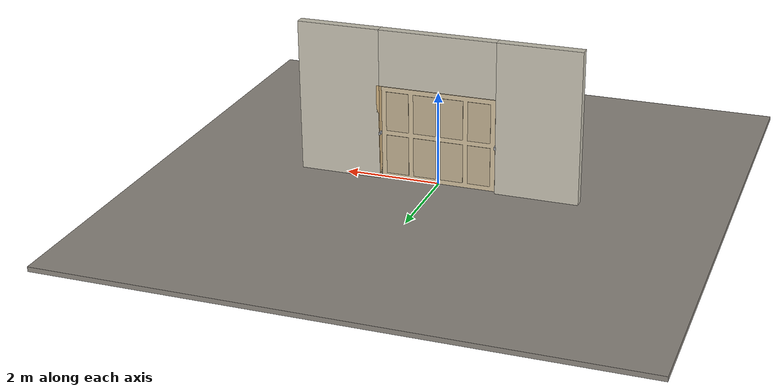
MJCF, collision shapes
<?xml version="1.0" ?>
<mujoco model="db0284_garage_tiltup_full">
  <compiler angle="radian" meshdir="../../hardware" texturedir="../../textures" autolimits="true" inertiafromgeom="false"/>
  <option timestep="0.002" integrator="implicitfast" cone="elliptic" impratio="10" noslip_iterations="3">
    <flag multiccd="enable"/>
  </option>
  <size memory="16M"/>
  <default>
    <geom condim="4" solref="0.005 1" solimp="0.95 0.99 0.001"/>
    <joint solreflimit="0.005 1" solimplimit="0.95 0.99 0.001"/>
    <tendon solreflimit="0.005 1"/>
    <equality solref="0.002 1"/>
  </default>
  <visual>
    <headlight ambient="0.4 0.4 0.4" diffuse="0.7 0.7 0.7" specular="0.2 0.2 0.2"/>
    <quality shadowsize="4096"/>
    <map znear="0.01" zfar="60"/>
  </visual>
  <asset>
    <mesh name="lever_01c630149d" file="lever_01c630149d.obj"/>
    <material name="mat_floor" rgba="0.55 0.53 0.5 1" specular="0.2" shininess="0.15" reflectance="0"/>
    <material name="mat_wall" rgba="0.78 0.76 0.7 1" specular="0.2" shininess="0.1" reflectance="0"/>
    <material name="mat_frame" rgba="0.82 0.7 0.5 1" specular="0.2" shininess="0.45" reflectance="0"/>
    <material name="mat_door" rgba="0.82 0.75 0.62 1" specular="0.23" shininess="0.58" reflectance="0.02"/>
    <material name="mat_door_panel" rgba="0.754 0.69 0.57 1" specular="0.23" shininess="0.58" reflectance="0.02"/>
    <material name="mat_track" rgba="0.65 0.66 0.68 1" specular="0.74" shininess="0.5" reflectance="0.36"/>
    <material name="mat_op_black_matte_metal" rgba="0.05 0.05 0.05 1" specular="0.38" shininess="0.3" reflectance="0.12"/>
    <material name="mat_trim" rgba="0.85 0.66 0.3 1" specular="0.8" shininess="0.75" reflectance="0.4"/>
    <texture name="skybox" type="skybox" builtin="gradient" rgb1="0.6 0.7 0.85" rgb2="0.9 0.92 0.95" width="256" height="256"/>
  </asset>
  <worldbody>
    <light name="sun" pos="1.5 -2.5 4" dir="-0.3 0.5 -0.8" directional="true" diffuse="0.8 0.8 0.8" specular="0.3 0.3 0.3" castshadow="true"/>
    <light name="fill" pos="-1.5 2.5 3" dir="0.3 -0.5 -0.7" directional="true" diffuse="0.35 0.35 0.4" castshadow="false"/>
    <camera name="robot_view" pos="0 -2.959375 1.853625" xyaxes="1 0 0 0 0.26963 0.962964" fovy="52"/>
    <camera name="far_view" pos="0 2.959375 1.853625" xyaxes="-1 0 0 0 -0.26963 0.962964" fovy="52"/>
    <camera name="iso" pos="2.249125 -2.485875 2.327125" xyaxes="0.741536 0.670913 0 -0.242917 0.268487 0.932151" fovy="46"/>
    <camera name="detail_handle" pos="0.2115 -1.1625 1.25" xyaxes="0.975133 0.221621 0 -0.065674 0.288965 0.955084" fovy="38"/>
    <geom name="floor" type="box" size="6 6 0.05" pos="0 0 -0.05" material="mat_floor" group="0" contype="1" conaffinity="1" friction="0.8 0.005 0.0001" density="2400"/>
    <geom name="wall_left" type="box" size="0.8775 0.1 1.625" pos="-2.1225 0 1.625" material="mat_wall" group="0" contype="1" conaffinity="1" friction="0.6 0.005 0.0001" density="800"/>
    <geom name="wall_right" type="box" size="0.8775 0.1 1.625" pos="2.1225 0 1.625" material="mat_wall" group="0" contype="1" conaffinity="1" friction="0.6 0.005 0.0001" density="800"/>
    <geom name="wall_header" type="box" size="1.245 0.1 0.6" pos="0 0 2.65" material="mat_wall" group="0" contype="1" conaffinity="1" friction="0.6 0.005 0.0001" density="800"/>
    <geom name="jamb_l" type="box" size="0.03 0.1 1.025" pos="-1.275 0 1.025" material="mat_frame" group="0" contype="1" conaffinity="1" friction="0.6 0.005 0.0001" density="400"/>
    <geom name="pivot_bracket_l" type="box" size="0.02 0.06 0.03" pos="-1.24 0.06 1" material="mat_track" group="1" contype="0" conaffinity="0" density="7850"/>
    <geom name="jamb_r" type="box" size="0.03 0.1 1.025" pos="1.275 0 1.025" material="mat_frame" group="0" contype="1" conaffinity="1" friction="0.6 0.005 0.0001" density="400"/>
    <geom name="pivot_bracket_r" type="box" size="0.02 0.06 0.03" pos="1.24 0.06 1" material="mat_track" group="1" contype="0" conaffinity="0" density="7850"/>
    <site name="approach_point" pos="0 -2 0" quat="1 0 0 0" size="0.05" rgba="0.2 0.9 0.2 0.5" group="4"/>
    <site name="goal_point" pos="0 2 0" quat="1 0 0 0" size="0.05" rgba="0.2 0.9 0.2 0.5" group="4"/>
    <site name="door_plane_center" pos="0 0 1.025" quat="1 0 0 0" size="0.02" rgba="0.2 0.9 0.2 0.5" group="4"/>
    <body name="door" pos="0 0 1">
      <inertial pos="0 0 0.01" mass="54.226482" quat="0 0 0.707107 0.707107" diaginertia="18.082740374 26.910760941 44.975160632"/>
      <joint name="door_hinge" type="hinge" axis="-1 0 0" limited="true" range="0 1.53589" damping="13.4548" frictionloss="3.831472" armature="0.5"/>
      <geom name="door_slab" type="box" size="1.22 0.0225 1" pos="0 0 0.01" material="mat_door" group="0" contype="1" conaffinity="1" friction="0.4 0.005 0.0001" density="1"/>
      <geom name="door_panel_0_n" type="box" size="0.2425 0.003 0.425" pos="-0.8775 -0.0255 -0.465" material="mat_door_panel" group="1" contype="0" conaffinity="0" density="1"/>
      <geom name="door_panel_0_p" type="box" size="0.2425 0.003 0.425" pos="-0.8775 0.0255 -0.465" material="mat_door_panel" group="1" contype="0" conaffinity="0" density="1"/>
      <geom name="door_panel_1_n" type="box" size="0.2425 0.003 0.425" pos="-0.2925 -0.0255 -0.465" material="mat_door_panel" group="1" contype="0" conaffinity="0" density="1"/>
      <geom name="door_panel_1_p" type="box" size="0.2425 0.003 0.425" pos="-0.2925 0.0255 -0.465" material="mat_door_panel" group="1" contype="0" conaffinity="0" density="1"/>
      <geom name="door_panel_2_n" type="box" size="0.2425 0.003 0.425" pos="0.2925 -0.0255 -0.465" material="mat_door_panel" group="1" contype="0" conaffinity="0" density="1"/>
      <geom name="door_panel_2_p" type="box" size="0.2425 0.003 0.425" pos="0.2925 0.0255 -0.465" material="mat_door_panel" group="1" contype="0" conaffinity="0" density="1"/>
      <geom name="door_panel_3_n" type="box" size="0.2425 0.003 0.425" pos="0.8775 -0.0255 -0.465" material="mat_door_panel" group="1" contype="0" conaffinity="0" density="1"/>
      <geom name="door_panel_3_p" type="box" size="0.2425 0.003 0.425" pos="0.8775 0.0255 -0.465" material="mat_door_panel" group="1" contype="0" conaffinity="0" density="1"/>
      <geom name="door_panel_4_n" type="box" size="0.2425 0.003 0.425" pos="-0.8775 -0.0255 0.485" material="mat_door_panel" group="1" contype="0" conaffinity="0" density="1"/>
      <geom name="door_panel_4_p" type="box" size="0.2425 0.003 0.425" pos="-0.8775 0.0255 0.485" material="mat_door_panel" group="1" contype="0" conaffinity="0" density="1"/>
      <geom name="door_panel_5_n" type="box" size="0.2425 0.003 0.425" pos="-0.2925 -0.0255 0.485" material="mat_door_panel" group="1" contype="0" conaffinity="0" density="1"/>
      <geom name="door_panel_5_p" type="box" size="0.2425 0.003 0.425" pos="-0.2925 0.0255 0.485" material="mat_door_panel" group="1" contype="0" conaffinity="0" density="1"/>
      <geom name="door_panel_6_n" type="box" size="0.2425 0.003 0.425" pos="0.2925 -0.0255 0.485" material="mat_door_panel" group="1" contype="0" conaffinity="0" density="1"/>
      <geom name="door_panel_6_p" type="box" size="0.2425 0.003 0.425" pos="0.2925 0.0255 0.485" material="mat_door_panel" group="1" contype="0" conaffinity="0" density="1"/>
      <geom name="door_panel_7_n" type="box" size="0.2425 0.003 0.425" pos="0.8775 -0.0255 0.485" material="mat_door_panel" group="1" contype="0" conaffinity="0" density="1"/>
      <geom name="door_panel_7_p" type="box" size="0.2425 0.003 0.425" pos="0.8775 0.0255 0.485" material="mat_door_panel" group="1" contype="0" conaffinity="0" density="1"/>
      <body name="t_handle" pos="0 0 -0.1">
        <inertial pos="0 -0.043758 0" mass="0.321518" quat="0.707107 0 0 -0.707107" diaginertia="0.000208692 0.000223196 0.000404264"/>
        <joint name="t_handle_hinge" type="hinge" axis="0 -1 0" limited="true" range="0 1.5708" damping="0.127804" frictionloss="0.028" stiffness="0.4" springref="-0.75" armature="0.01"/>
        <geom name="t_handle_spindle" type="cylinder" size="0.006 0.0305" pos="0 0 0" quat="0.707107 -0.707107 0 0" material="mat_op_black_matte_metal" group="1" contype="0" conaffinity="0" density="7850"/>
        <geom name="t_handle_t_n" type="mesh" mesh="lever_01c630149d" pos="0 -0.0225 0" quat="0.707107 0.707107 0 0" material="mat_op_black_matte_metal" group="1" contype="0" conaffinity="0" density="3000"/>
        <geom name="t_handle_t_col_n" type="box" size="0.055 0.008 0.008" pos="0 -0.0625 0" material="mat_op_black_matte_metal" group="3" contype="1" conaffinity="1" rgba="0.8 0.3 0.3 0.25" friction="0.6 0.005 0.0001" density="3000"/>
        <geom name="t_handle_cylinder_n" type="cylinder" size="0.0085 0.004" pos="0 -0.0725 0" quat="0.707107 -0.707107 0 0" material="mat_trim" group="1" contype="0" conaffinity="0" density="7100"/>
        <site name="t_handle_grip_n" pos="-0.0385 -0.0625 0" quat="1 0 0 0" size="0.012" rgba="0.2 0.9 0.2 0.5" group="4"/>
      </body>
    </body>
  </worldbody>
  <sensor>
    <jointpos name="door_hinge_pos" joint="door_hinge"/>
    <jointvel name="door_hinge_vel" joint="door_hinge"/>
    <jointpos name="t_handle_hinge_pos" joint="t_handle_hinge"/>
    <jointvel name="t_handle_hinge_vel" joint="t_handle_hinge"/>
  </sensor>
</mujoco>
